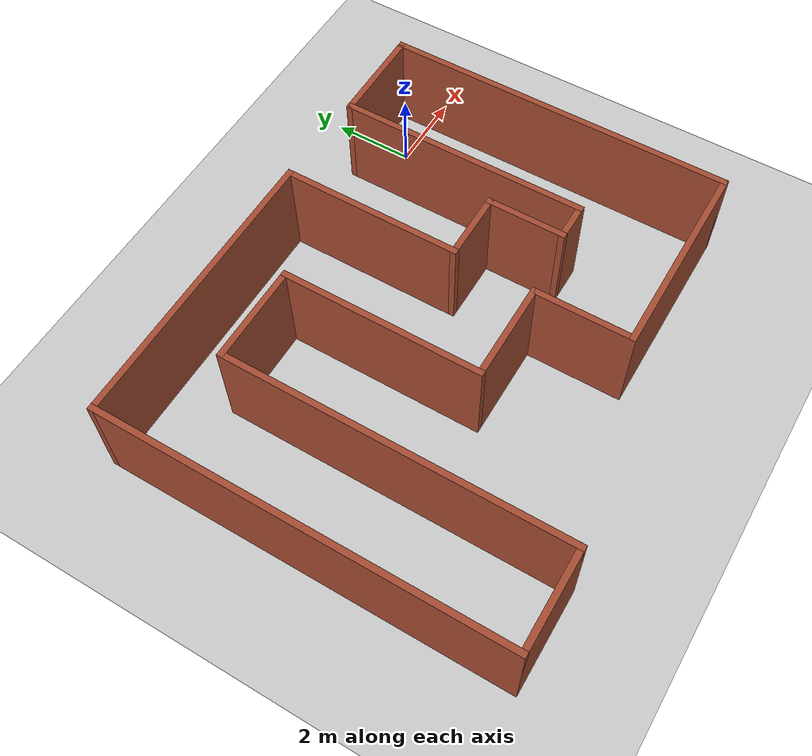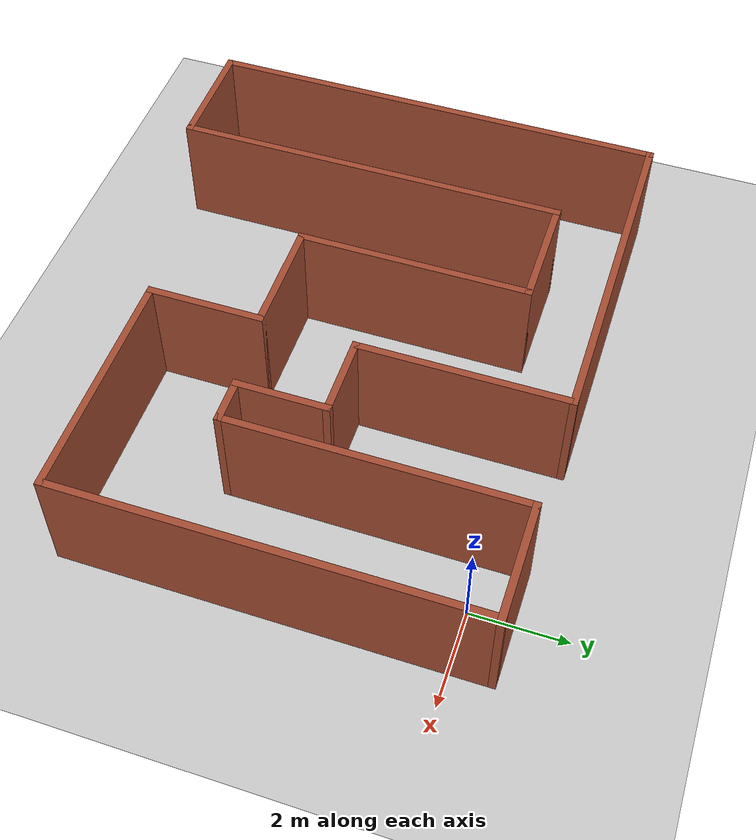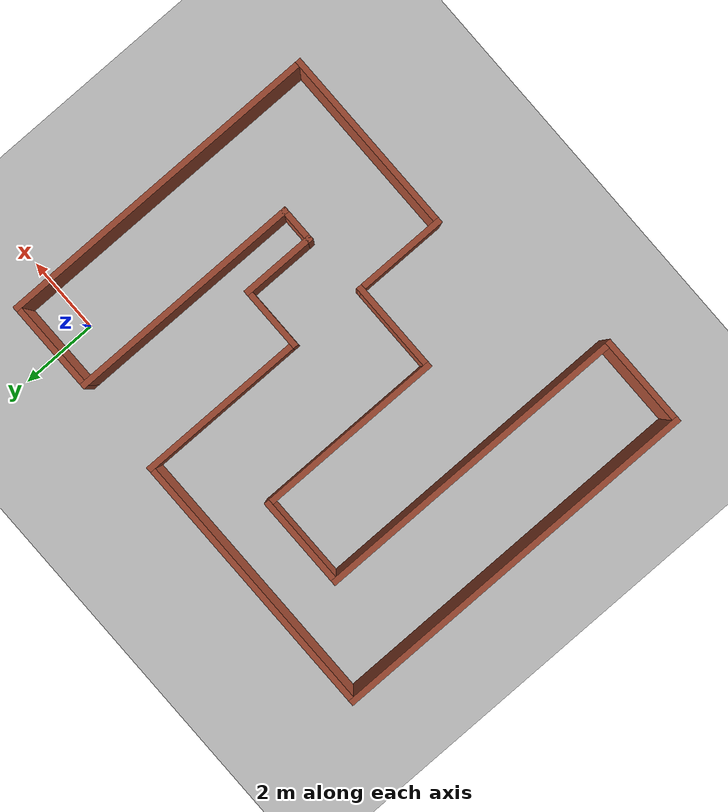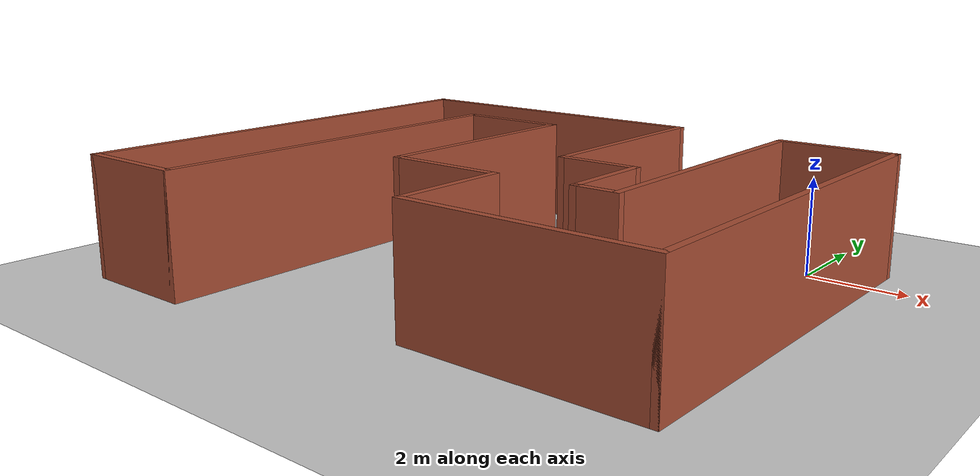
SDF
<sdf version="1.6">
 <world name="default">
  <light name="sun" type="directional">
   <pose>0 0 10 0 -0 0</pose>
   <diffuse>0.8 0.8 0.8 1</diffuse>
   <specular>0.2 0.2 0.2 1</specular>
   <attenuation>
    <range>1000</range>
    <constant>0.9</constant>
    <linear>0.01</linear>
    <quadratic>0.001</quadratic>
   </attenuation>
   <direction>-0.5 0.1 -0.9</direction>
  </light>
  <model name="ground_plane">
   <static>1</static>
   <link name="link">
    <collision name="collision">
     <geometry><plane><normal>0 0 1</normal><size>100 100</size></plane></geometry>
     <surface><friction><ode><mu>100</mu><mu2>50</mu2></ode></friction></surface>
    </collision>
    <visual name="visual">
     <cast_shadows>0</cast_shadows>
     <geometry><plane><normal>0 0 1</normal><size>100 100</size></plane></geometry>
     <material>
      <script><uri>file://media/materials/scripts/gazebo.material</uri><name>Gazebo/Grey</name></script>
     </material>
    </visual>
   </link>
  </model>
  <gravity>0 0 -9.8</gravity>
  <magnetic_field>6e-06 2.3e-05 -4.2e-05</magnetic_field>
  <atmosphere type="adiabatic"/>
  <physics name="default_physics" default="0" type="ode">
   <max_step_size>0.001</max_step_size>
   <real_time_factor>1</real_time_factor>
   <real_time_update_rate>1000</real_time_update_rate>
  </physics>
  <scene><ambient>0.4 0.4 0.4 1</ambient><background>0.7 0.7 0.7 1</background><shadows>1</shadows></scene>
  <spherical_coordinates>
   <surface_model>EARTH_WGS84</surface_model>
   <latitude_deg>0</latitude_deg>
   <longitude_deg>0</longitude_deg>
   <elevation>0</elevation>
   <heading_deg>0</heading_deg>
  </spherical_coordinates>
  <model name="Untitled3">
   <pose>-4.70518 -3.98493 0 0 -0 0</pose>
   <link name="Wall_0">
    <collision name="Wall_0_Collision">
     <geometry><box><size>10 0.15 2.5</size></box></geometry>
     <pose>0 0 1.25 0 -0 0</pose>
    </collision>
    <visual name="Wall_0_Visual">
     <pose>0 0 1.25 0 -0 0</pose>
     <geometry><box><size>10 0.15 2.5</size></box></geometry>
     <material>
      <script><uri>file://media/materials/scripts/gazebo.material</uri><name>Gazebo/Bricks</name></script>
      <ambient>1 1 1 1</ambient>
     </material>
     <meta><layer>0</layer></meta>
    </visual>
    <pose>-5.95 0 0 0 0 -1.5708</pose>
   </link>
   <link name="Wall_1">
    <collision name="Wall_1_Collision">
     <geometry><box><size>2.5 0.15 2.5</size></box></geometry>
     <pose>0 0 1.25 0 -0 0</pose>
    </collision>
    <visual name="Wall_1_Visual">
     <pose>0 0 1.25 0 -0 0</pose>
     <geometry><box><size>2.5 0.15 2.5</size></box></geometry>
     <material>
      <script><uri>file://media/materials/scripts/gazebo.material</uri><name>Gazebo/Bricks</name></script>
      <ambient>1 1 1 1</ambient>
     </material>
     <meta><layer>0</layer></meta>
    </visual>
    <pose>-4.775 -4.925 0 0 -0 0</pose>
   </link>
   <link name="Wall_10">
    <collision name="Wall_10_Collision">
     <geometry><box><size>6.25 0.15 2.5</size></box></geometry>
     <pose>0 0 1.25 0 -0 0</pose>
    </collision>
    <visual name="Wall_10_Visual">
     <pose>0 0 1.25 0 -0 0</pose>
     <geometry><box><size>6.25 0.15 2.5</size></box></geometry>
     <material>
      <script><uri>file://media/materials/scripts/gazebo.material</uri><name>Gazebo/Bricks</name></script>
      <ambient>1 1 1 1</ambient>
     </material>
     <meta><layer>0</layer></meta>
    </visual>
    <pose>3.6 1.775 0 0 0 -1.5708</pose>
   </link>
   <link name="Wall_11">
    <collision name="Wall_11_Collision">
     <geometry><box><size>1 0.15 2.5</size></box></geometry>
     <pose>0 0 1.25 0 -0 0</pose>
    </collision>
    <visual name="Wall_11_Visual">
     <pose>0 0 1.25 0 -0 0</pose>
     <geometry><box><size>1 0.15 2.5</size></box></geometry>
     <material>
      <script><uri>file://media/materials/scripts/gazebo.material</uri><name>Gazebo/Bricks</name></script>
      <ambient>1 1 1 1</ambient>
     </material>
     <meta><layer>0</layer></meta>
    </visual>
    <pose>3.175 -1.275 0 0 -0 3.14159</pose>
   </link>
   <link name="Wall_12">
    <collision name="Wall_12_Collision">
     <geometry><box><size>2 0.15 2.5</size></box></geometry>
     <pose>0 0 1.25 0 -0 0</pose>
    </collision>
    <visual name="Wall_12_Visual">
     <pose>0 0 1.25 0 -0 0</pose>
     <geometry><box><size>2 0.15 2.5</size></box></geometry>
     <material>
      <script><uri>file://media/materials/scripts/gazebo.material</uri><name>Gazebo/Bricks</name></script>
      <ambient>1 1 1 1</ambient>
     </material>
     <meta><layer>0</layer></meta>
    </visual>
    <pose>2.75 -0.35 0 0 -0 1.5708</pose>
   </link>
   <link name="Wall_13">
    <collision name="Wall_13_Collision">
     <geometry><box><size>1.75 0.15 2.5</size></box></geometry>
     <pose>0 0 1.25 0 -0 0</pose>
    </collision>
    <visual name="Wall_13_Visual">
     <pose>0 0 1.25 0 -0 0</pose>
     <geometry><box><size>1.75 0.15 2.5</size></box></geometry>
     <material>
      <script><uri>file://media/materials/scripts/gazebo.material</uri><name>Gazebo/Bricks</name></script>
      <ambient>1 1 1 1</ambient>
     </material>
     <meta><layer>0</layer></meta>
    </visual>
    <pose>1.95 0.575 0 0 -0 3.14159</pose>
   </link>
   <link name="Wall_14">
    <collision name="Wall_14_Collision">
     <geometry><box><size>4.5 0.15 2.5</size></box></geometry>
     <pose>0 0 1.25 0 -0 0</pose>
    </collision>
    <visual name="Wall_14_Visual">
     <pose>0 0 1.25 0 -0 0</pose>
     <geometry><box><size>4.5 0.15 2.5</size></box></geometry>
     <material>
      <script><uri>file://media/materials/scripts/gazebo.material</uri><name>Gazebo/Bricks</name></script>
      <ambient>1 1 1 1</ambient>
     </material>
     <meta><layer>0</layer></meta>
    </visual>
    <pose>1.15 2.75 0 0 -0 1.5708</pose>
   </link>
   <link name="Wall_15">
    <collision name="Wall_15_Collision">
     <geometry><box><size>7.25 0.15 2.5</size></box></geometry>
     <pose>0 0 1.25 0 -0 0</pose>
    </collision>
    <visual name="Wall_15_Visual">
     <pose>0 0 1.25 0 -0 0</pose>
     <geometry><box><size>7.25 0.15 2.5</size></box></geometry>
     <material>
      <script><uri>file://media/materials/scripts/gazebo.material</uri><name>Gazebo/Bricks</name></script>
      <ambient>1 1 1 1</ambient>
     </material>
     <meta><layer>0</layer></meta>
    </visual>
    <pose>-2.4 4.925 0 0 -0 3.14159</pose>
   </link>
   <link name="Wall_2">
    <collision name="Wall_2_Collision">
     <geometry><box><size>8.5 0.15 2.5</size></box></geometry>
     <pose>0 0 1.25 0 -0 0</pose>
    </collision>
    <visual name="Wall_2_Visual">
     <pose>0 0 1.25 0 -0 0</pose>
     <geometry><box><size>8.5 0.15 2.5</size></box></geometry>
     <material>
      <script><uri>file://media/materials/scripts/gazebo.material</uri><name>Gazebo/Bricks</name></script>
      <ambient>1 1 1 1</ambient>
     </material>
     <meta><layer>0</layer></meta>
    </visual>
    <pose>-3.6 -0.75 0 0 -0 1.5708</pose>
   </link>
   <link name="Wall_3">
    <collision name="Wall_3_Collision">
     <geometry><box><size>2.5 0.15 2.5</size></box></geometry>
     <pose>0 0 1.25 0 -0 0</pose>
    </collision>
    <visual name="Wall_3_Visual">
     <pose>0 0 1.25 0 -0 0</pose>
     <geometry><box><size>2.5 0.15 2.5</size></box></geometry>
     <material>
      <script><uri>file://media/materials/scripts/gazebo.material</uri><name>Gazebo/Bricks</name></script>
      <ambient>1 1 1 1</ambient>
     </material>
     <meta><layer>0</layer></meta>
    </visual>
    <pose>-2.425 3.425 0 0 -0 0</pose>
   </link>
   <link name="Wall_4">
    <collision name="Wall_4_Collision">
     <geometry><box><size>5 0.15 2.5</size></box></geometry>
     <pose>0 0 1.25 0 -0 0</pose>
    </collision>
    <visual name="Wall_4_Visual">
     <pose>0 0 1.25 0 -0 0</pose>
     <geometry><box><size>5 0.15 2.5</size></box></geometry>
     <material>
      <script><uri>file://media/materials/scripts/gazebo.material</uri><name>Gazebo/Bricks</name></script>
      <ambient>1 1 1 1</ambient>
     </material>
     <meta><layer>0</layer></meta>
    </visual>
    <pose>-1.25 1 0 0 0 -1.5708</pose>
   </link>
   <link name="Wall_5">
    <collision name="Wall_5_Collision">
     <geometry><box><size>2.5 0.15 2.5</size></box></geometry>
     <pose>0 0 1.25 0 -0 0</pose>
    </collision>
    <visual name="Wall_5_Visual">
     <pose>0 0 1.25 0 -0 0</pose>
     <geometry><box><size>2.5 0.15 2.5</size></box></geometry>
     <material>
      <script><uri>file://media/materials/scripts/gazebo.material</uri><name>Gazebo/Bricks</name></script>
      <ambient>1 1 1 1</ambient>
     </material>
     <meta><layer>0</layer></meta>
    </visual>
    <pose>-0.075 -1.425 0 0 -0 0</pose>
   </link>
   <link name="Wall_6">
    <collision name="Wall_6_Collision">
     <geometry><box><size>2.5 0.15 2.5</size></box></geometry>
     <pose>0 0 1.25 0 -0 0</pose>
    </collision>
    <visual name="Wall_6_Visual">
     <pose>0 0 1.25 0 -0 0</pose>
     <geometry><box><size>2.5 0.15 2.5</size></box></geometry>
     <material>
      <script><uri>file://media/materials/scripts/gazebo.material</uri><name>Gazebo/Bricks</name></script>
      <ambient>1 1 1 1</ambient>
     </material>
     <meta><layer>0</layer></meta>
    </visual>
    <pose>1.1 -2.6 0 0 0 -1.5708</pose>
   </link>
   <link name="Wall_7">
    <collision name="Wall_7_Collision">
     <geometry><box><size>5 0.15 2.5</size></box></geometry>
     <pose>0 0 1.25 0 -0 0</pose>
    </collision>
    <visual name="Wall_7_Visual">
     <pose>0 0 1.25 0 -0 0</pose>
     <geometry><box><size>5 0.15 2.5</size></box></geometry>
     <material>
      <script><uri>file://media/materials/scripts/gazebo.material</uri><name>Gazebo/Bricks</name></script>
      <ambient>1 1 1 1</ambient>
     </material>
     <meta><layer>0</layer></meta>
    </visual>
    <pose>3.525 -3.775 0 0 -0 0</pose>
   </link>
   <link name="Wall_8">
    <collision name="Wall_8_Collision">
     <geometry><box><size>8.75 0.15 2.5</size></box></geometry>
     <pose>0 0 1.25 0 -0 0</pose>
    </collision>
    <visual name="Wall_8_Visual">
     <pose>0 0 1.25 0 -0 0</pose>
     <geometry><box><size>8.75 0.15 2.5</size></box></geometry>
     <material>
      <script><uri>file://media/materials/scripts/gazebo.material</uri><name>Gazebo/Bricks</name></script>
      <ambient>1 1 1 1</ambient>
     </material>
     <meta><layer>0</layer></meta>
    </visual>
    <pose>5.95 0.525 0 0 -0 1.5708</pose>
   </link>
   <link name="Wall_9">
    <collision name="Wall_9_Collision">
     <geometry><box><size>2.5 0.15 2.5</size></box></geometry>
     <pose>0 0 1.25 0 -0 0</pose>
    </collision>
    <visual name="Wall_9_Visual">
     <pose>0 0 1.25 0 -0 0</pose>
     <geometry><box><size>2.5 0.15 2.5</size></box></geometry>
     <material>
      <script><uri>file://media/materials/scripts/gazebo.material</uri><name>Gazebo/Bricks</name></script>
      <ambient>1 1 1 1</ambient>
     </material>
     <meta><layer>0</layer></meta>
    </visual>
    <pose>4.775 4.825 0 0 -0 3.14159</pose>
   </link>
   <static>1</static>
  </model>
 </world>
</sdf>
